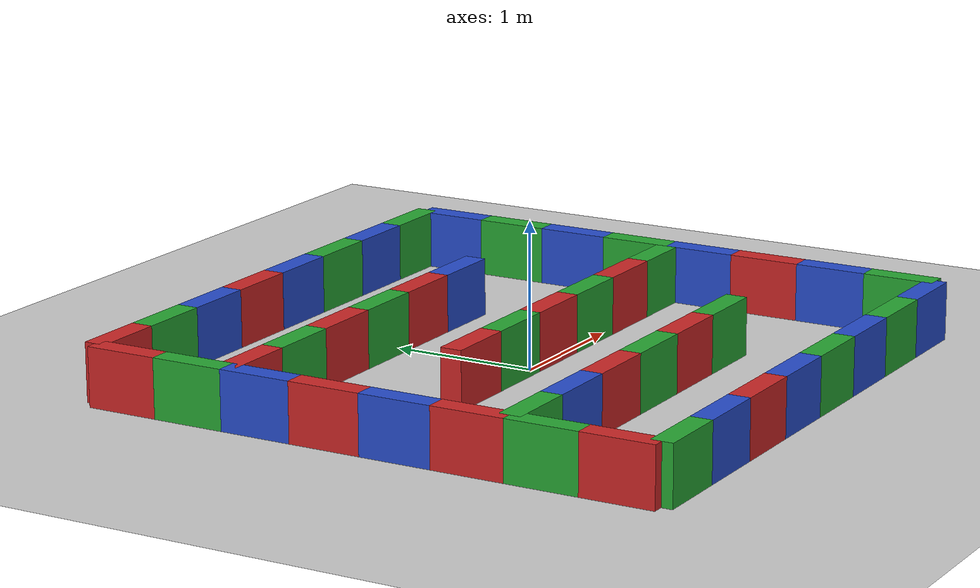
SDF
<?xml version="1.0" ?>
<!-- 자동 생성: generate_world.py  (블록 0.5x0.4m 가로직사각형, 세로 동일색, 순환아님) -->
<sdf version="1.6">
  <world name="color_maze">
    <include><uri>model://sun</uri></include>
    <include><uri>model://ground_plane</uri></include>
    <scene>
      <ambient>0.6 0.6 0.6 1</ambient>
      <background>0.7 0.7 0.7 1</background>
      <shadows>false</shadows>
    </scene>
    <physics type="ode">
      <real_time_update_rate>1000</real_time_update_rate>
      <max_step_size>0.001</max_step_size>
    </physics>

    <model name="wall_outer_bottom">
      <static>true</static>
      <pose>0 -2 0.2 0 0 0</pose>
      <link name="link">
        <collision name="c"><geometry><box><size>4.0 0.15 0.4</size></box></geometry></collision>
        <visual name="b_0">
          <pose>-1.7500 0 0 0 0 0</pose>
          <geometry><box><size>0.5 0.15 0.4</size></box></geometry>
          <material><script><uri>file://media/materials/scripts/gazebo.material</uri><name>Gazebo/Green</name></script></material>
        </visual>
        <visual name="b_1">
          <pose>-1.2500 0 0 0 0 0</pose>
          <geometry><box><size>0.5 0.15 0.4</size></box></geometry>
          <material><script><uri>file://media/materials/scripts/gazebo.material</uri><name>Gazebo/Blue</name></script></material>
        </visual>
        <visual name="b_2">
          <pose>-0.7500 0 0 0 0 0</pose>
          <geometry><box><size>0.5 0.15 0.4</size></box></geometry>
          <material><script><uri>file://media/materials/scripts/gazebo.material</uri><name>Gazebo/Red</name></script></material>
        </visual>
        <visual name="b_3">
          <pose>-0.2500 0 0 0 0 0</pose>
          <geometry><box><size>0.5 0.15 0.4</size></box></geometry>
          <material><script><uri>file://media/materials/scripts/gazebo.material</uri><name>Gazebo/Blue</name></script></material>
        </visual>
        <visual name="b_4">
          <pose>0.2500 0 0 0 0 0</pose>
          <geometry><box><size>0.5 0.15 0.4</size></box></geometry>
          <material><script><uri>file://media/materials/scripts/gazebo.material</uri><name>Gazebo/Green</name></script></material>
        </visual>
        <visual name="b_5">
          <pose>0.7500 0 0 0 0 0</pose>
          <geometry><box><size>0.5 0.15 0.4</size></box></geometry>
          <material><script><uri>file://media/materials/scripts/gazebo.material</uri><name>Gazebo/Blue</name></script></material>
        </visual>
        <visual name="b_6">
          <pose>1.2500 0 0 0 0 0</pose>
          <geometry><box><size>0.5 0.15 0.4</size></box></geometry>
          <material><script><uri>file://media/materials/scripts/gazebo.material</uri><name>Gazebo/Green</name></script></material>
        </visual>
        <visual name="b_7">
          <pose>1.7500 0 0 0 0 0</pose>
          <geometry><box><size>0.5 0.15 0.4</size></box></geometry>
          <material><script><uri>file://media/materials/scripts/gazebo.material</uri><name>Gazebo/Blue</name></script></material>
        </visual>
      </link>
    </model>

    <model name="wall_outer_top">
      <static>true</static>
      <pose>0 2 0.2 0 0 0</pose>
      <link name="link">
        <collision name="c"><geometry><box><size>4.0 0.15 0.4</size></box></geometry></collision>
        <visual name="b_0">
          <pose>-1.7500 0 0 0 0 0</pose>
          <geometry><box><size>0.5 0.15 0.4</size></box></geometry>
          <material><script><uri>file://media/materials/scripts/gazebo.material</uri><name>Gazebo/Red</name></script></material>
        </visual>
        <visual name="b_1">
          <pose>-1.2500 0 0 0 0 0</pose>
          <geometry><box><size>0.5 0.15 0.4</size></box></geometry>
          <material><script><uri>file://media/materials/scripts/gazebo.material</uri><name>Gazebo/Green</name></script></material>
        </visual>
        <visual name="b_2">
          <pose>-0.7500 0 0 0 0 0</pose>
          <geometry><box><size>0.5 0.15 0.4</size></box></geometry>
          <material><script><uri>file://media/materials/scripts/gazebo.material</uri><name>Gazebo/Blue</name></script></material>
        </visual>
        <visual name="b_3">
          <pose>-0.2500 0 0 0 0 0</pose>
          <geometry><box><size>0.5 0.15 0.4</size></box></geometry>
          <material><script><uri>file://media/materials/scripts/gazebo.material</uri><name>Gazebo/Red</name></script></material>
        </visual>
        <visual name="b_4">
          <pose>0.2500 0 0 0 0 0</pose>
          <geometry><box><size>0.5 0.15 0.4</size></box></geometry>
          <material><script><uri>file://media/materials/scripts/gazebo.material</uri><name>Gazebo/Blue</name></script></material>
        </visual>
        <visual name="b_5">
          <pose>0.7500 0 0 0 0 0</pose>
          <geometry><box><size>0.5 0.15 0.4</size></box></geometry>
          <material><script><uri>file://media/materials/scripts/gazebo.material</uri><name>Gazebo/Green</name></script></material>
        </visual>
        <visual name="b_6">
          <pose>1.2500 0 0 0 0 0</pose>
          <geometry><box><size>0.5 0.15 0.4</size></box></geometry>
          <material><script><uri>file://media/materials/scripts/gazebo.material</uri><name>Gazebo/Blue</name></script></material>
        </visual>
        <visual name="b_7">
          <pose>1.7500 0 0 0 0 0</pose>
          <geometry><box><size>0.5 0.15 0.4</size></box></geometry>
          <material><script><uri>file://media/materials/scripts/gazebo.material</uri><name>Gazebo/Green</name></script></material>
        </visual>
      </link>
    </model>

    <model name="wall_outer_left">
      <static>true</static>
      <pose>-2 0 0.2 0 0 0</pose>
      <link name="link">
        <collision name="c"><geometry><box><size>0.15 4.0 0.4</size></box></geometry></collision>
        <visual name="b_0">
          <pose>0 -1.7500 0 0 0 0</pose>
          <geometry><box><size>0.15 0.5 0.4</size></box></geometry>
          <material><script><uri>file://media/materials/scripts/gazebo.material</uri><name>Gazebo/Red</name></script></material>
        </visual>
        <visual name="b_1">
          <pose>0 -1.2500 0 0 0 0</pose>
          <geometry><box><size>0.15 0.5 0.4</size></box></geometry>
          <material><script><uri>file://media/materials/scripts/gazebo.material</uri><name>Gazebo/Green</name></script></material>
        </visual>
        <visual name="b_2">
          <pose>0 -0.7500 0 0 0 0</pose>
          <geometry><box><size>0.15 0.5 0.4</size></box></geometry>
          <material><script><uri>file://media/materials/scripts/gazebo.material</uri><name>Gazebo/Red</name></script></material>
        </visual>
        <visual name="b_3">
          <pose>0 -0.2500 0 0 0 0</pose>
          <geometry><box><size>0.15 0.5 0.4</size></box></geometry>
          <material><script><uri>file://media/materials/scripts/gazebo.material</uri><name>Gazebo/Blue</name></script></material>
        </visual>
        <visual name="b_4">
          <pose>0 0.2500 0 0 0 0</pose>
          <geometry><box><size>0.15 0.5 0.4</size></box></geometry>
          <material><script><uri>file://media/materials/scripts/gazebo.material</uri><name>Gazebo/Red</name></script></material>
        </visual>
        <visual name="b_5">
          <pose>0 0.7500 0 0 0 0</pose>
          <geometry><box><size>0.15 0.5 0.4</size></box></geometry>
          <material><script><uri>file://media/materials/scripts/gazebo.material</uri><name>Gazebo/Blue</name></script></material>
        </visual>
        <visual name="b_6">
          <pose>0 1.2500 0 0 0 0</pose>
          <geometry><box><size>0.15 0.5 0.4</size></box></geometry>
          <material><script><uri>file://media/materials/scripts/gazebo.material</uri><name>Gazebo/Green</name></script></material>
        </visual>
        <visual name="b_7">
          <pose>0 1.7500 0 0 0 0</pose>
          <geometry><box><size>0.15 0.5 0.4</size></box></geometry>
          <material><script><uri>file://media/materials/scripts/gazebo.material</uri><name>Gazebo/Red</name></script></material>
        </visual>
      </link>
    </model>

    <model name="wall_outer_right">
      <static>true</static>
      <pose>2 0 0.2 0 0 0</pose>
      <link name="link">
        <collision name="c"><geometry><box><size>0.15 4.0 0.4</size></box></geometry></collision>
        <visual name="b_0">
          <pose>0 -1.7500 0 0 0 0</pose>
          <geometry><box><size>0.15 0.5 0.4</size></box></geometry>
          <material><script><uri>file://media/materials/scripts/gazebo.material</uri><name>Gazebo/Green</name></script></material>
        </visual>
        <visual name="b_1">
          <pose>0 -1.2500 0 0 0 0</pose>
          <geometry><box><size>0.15 0.5 0.4</size></box></geometry>
          <material><script><uri>file://media/materials/scripts/gazebo.material</uri><name>Gazebo/Blue</name></script></material>
        </visual>
        <visual name="b_2">
          <pose>0 -0.7500 0 0 0 0</pose>
          <geometry><box><size>0.15 0.5 0.4</size></box></geometry>
          <material><script><uri>file://media/materials/scripts/gazebo.material</uri><name>Gazebo/Red</name></script></material>
        </visual>
        <visual name="b_3">
          <pose>0 -0.2500 0 0 0 0</pose>
          <geometry><box><size>0.15 0.5 0.4</size></box></geometry>
          <material><script><uri>file://media/materials/scripts/gazebo.material</uri><name>Gazebo/Blue</name></script></material>
        </visual>
        <visual name="b_4">
          <pose>0 0.2500 0 0 0 0</pose>
          <geometry><box><size>0.15 0.5 0.4</size></box></geometry>
          <material><script><uri>file://media/materials/scripts/gazebo.material</uri><name>Gazebo/Green</name></script></material>
        </visual>
        <visual name="b_5">
          <pose>0 0.7500 0 0 0 0</pose>
          <geometry><box><size>0.15 0.5 0.4</size></box></geometry>
          <material><script><uri>file://media/materials/scripts/gazebo.material</uri><name>Gazebo/Blue</name></script></material>
        </visual>
        <visual name="b_6">
          <pose>0 1.2500 0 0 0 0</pose>
          <geometry><box><size>0.15 0.5 0.4</size></box></geometry>
          <material><script><uri>file://media/materials/scripts/gazebo.material</uri><name>Gazebo/Green</name></script></material>
        </visual>
        <visual name="b_7">
          <pose>0 1.7500 0 0 0 0</pose>
          <geometry><box><size>0.15 0.5 0.4</size></box></geometry>
          <material><script><uri>file://media/materials/scripts/gazebo.material</uri><name>Gazebo/Blue</name></script></material>
        </visual>
      </link>
    </model>

    <model name="wall_b1_c0">
      <static>true</static>
      <pose>-1.5 -1.0 0.2 0 0 0</pose>
      <link name="link">
        <collision name="c"><geometry><box><size>1.0 0.15 0.4</size></box></geometry></collision>
        <visual name="b_0">
          <pose>-0.2500 0 0 0 0 0</pose>
          <geometry><box><size>0.5 0.15 0.4</size></box></geometry>
          <material><script><uri>file://media/materials/scripts/gazebo.material</uri><name>Gazebo/Green</name></script></material>
        </visual>
        <visual name="b_1">
          <pose>0.2500 0 0 0 0 0</pose>
          <geometry><box><size>0.5 0.15 0.4</size></box></geometry>
          <material><script><uri>file://media/materials/scripts/gazebo.material</uri><name>Gazebo/Blue</name></script></material>
        </visual>
      </link>
    </model>

    <model name="wall_b1_c1">
      <static>true</static>
      <pose>-0.5 -1.0 0.2 0 0 0</pose>
      <link name="link">
        <collision name="c"><geometry><box><size>1.0 0.15 0.4</size></box></geometry></collision>
        <visual name="b_0">
          <pose>-0.2500 0 0 0 0 0</pose>
          <geometry><box><size>0.5 0.15 0.4</size></box></geometry>
          <material><script><uri>file://media/materials/scripts/gazebo.material</uri><name>Gazebo/Red</name></script></material>
        </visual>
        <visual name="b_1">
          <pose>0.2500 0 0 0 0 0</pose>
          <geometry><box><size>0.5 0.15 0.4</size></box></geometry>
          <material><script><uri>file://media/materials/scripts/gazebo.material</uri><name>Gazebo/Green</name></script></material>
        </visual>
      </link>
    </model>

    <model name="wall_b1_c2">
      <static>true</static>
      <pose>0.5 -1.0 0.2 0 0 0</pose>
      <link name="link">
        <collision name="c"><geometry><box><size>1.0 0.15 0.4</size></box></geometry></collision>
        <visual name="b_0">
          <pose>-0.2500 0 0 0 0 0</pose>
          <geometry><box><size>0.5 0.15 0.4</size></box></geometry>
          <material><script><uri>file://media/materials/scripts/gazebo.material</uri><name>Gazebo/Red</name></script></material>
        </visual>
        <visual name="b_1">
          <pose>0.2500 0 0 0 0 0</pose>
          <geometry><box><size>0.5 0.15 0.4</size></box></geometry>
          <material><script><uri>file://media/materials/scripts/gazebo.material</uri><name>Gazebo/Green</name></script></material>
        </visual>
      </link>
    </model>

    <model name="wall_b2_c0">
      <static>true</static>
      <pose>-0.5 0.0 0.2 0 0 0</pose>
      <link name="link">
        <collision name="c"><geometry><box><size>1.0 0.15 0.4</size></box></geometry></collision>
        <visual name="b_0">
          <pose>-0.2500 0 0 0 0 0</pose>
          <geometry><box><size>0.5 0.15 0.4</size></box></geometry>
          <material><script><uri>file://media/materials/scripts/gazebo.material</uri><name>Gazebo/Red</name></script></material>
        </visual>
        <visual name="b_1">
          <pose>0.2500 0 0 0 0 0</pose>
          <geometry><box><size>0.5 0.15 0.4</size></box></geometry>
          <material><script><uri>file://media/materials/scripts/gazebo.material</uri><name>Gazebo/Green</name></script></material>
        </visual>
      </link>
    </model>

    <model name="wall_b2_c1">
      <static>true</static>
      <pose>0.5 0.0 0.2 0 0 0</pose>
      <link name="link">
        <collision name="c"><geometry><box><size>1.0 0.15 0.4</size></box></geometry></collision>
        <visual name="b_0">
          <pose>-0.2500 0 0 0 0 0</pose>
          <geometry><box><size>0.5 0.15 0.4</size></box></geometry>
          <material><script><uri>file://media/materials/scripts/gazebo.material</uri><name>Gazebo/Red</name></script></material>
        </visual>
        <visual name="b_1">
          <pose>0.2500 0 0 0 0 0</pose>
          <geometry><box><size>0.5 0.15 0.4</size></box></geometry>
          <material><script><uri>file://media/materials/scripts/gazebo.material</uri><name>Gazebo/Green</name></script></material>
        </visual>
      </link>
    </model>

    <model name="wall_b2_c2">
      <static>true</static>
      <pose>1.5 0.0 0.2 0 0 0</pose>
      <link name="link">
        <collision name="c"><geometry><box><size>1.0 0.15 0.4</size></box></geometry></collision>
        <visual name="b_0">
          <pose>-0.2500 0 0 0 0 0</pose>
          <geometry><box><size>0.5 0.15 0.4</size></box></geometry>
          <material><script><uri>file://media/materials/scripts/gazebo.material</uri><name>Gazebo/Red</name></script></material>
        </visual>
        <visual name="b_1">
          <pose>0.2500 0 0 0 0 0</pose>
          <geometry><box><size>0.5 0.15 0.4</size></box></geometry>
          <material><script><uri>file://media/materials/scripts/gazebo.material</uri><name>Gazebo/Green</name></script></material>
        </visual>
      </link>
    </model>

    <model name="wall_b3_c0">
      <static>true</static>
      <pose>-1.5 1.0 0.2 0 0 0</pose>
      <link name="link">
        <collision name="c"><geometry><box><size>1.0 0.15 0.4</size></box></geometry></collision>
        <visual name="b_0">
          <pose>-0.2500 0 0 0 0 0</pose>
          <geometry><box><size>0.5 0.15 0.4</size></box></geometry>
          <material><script><uri>file://media/materials/scripts/gazebo.material</uri><name>Gazebo/Red</name></script></material>
        </visual>
        <visual name="b_1">
          <pose>0.2500 0 0 0 0 0</pose>
          <geometry><box><size>0.5 0.15 0.4</size></box></geometry>
          <material><script><uri>file://media/materials/scripts/gazebo.material</uri><name>Gazebo/Green</name></script></material>
        </visual>
      </link>
    </model>

    <model name="wall_b3_c1">
      <static>true</static>
      <pose>-0.5 1.0 0.2 0 0 0</pose>
      <link name="link">
        <collision name="c"><geometry><box><size>1.0 0.15 0.4</size></box></geometry></collision>
        <visual name="b_0">
          <pose>-0.2500 0 0 0 0 0</pose>
          <geometry><box><size>0.5 0.15 0.4</size></box></geometry>
          <material><script><uri>file://media/materials/scripts/gazebo.material</uri><name>Gazebo/Red</name></script></material>
        </visual>
        <visual name="b_1">
          <pose>0.2500 0 0 0 0 0</pose>
          <geometry><box><size>0.5 0.15 0.4</size></box></geometry>
          <material><script><uri>file://media/materials/scripts/gazebo.material</uri><name>Gazebo/Green</name></script></material>
        </visual>
      </link>
    </model>

    <model name="wall_b3_c2">
      <static>true</static>
      <pose>0.5 1.0 0.2 0 0 0</pose>
      <link name="link">
        <collision name="c"><geometry><box><size>1.0 0.15 0.4</size></box></geometry></collision>
        <visual name="b_0">
          <pose>-0.2500 0 0 0 0 0</pose>
          <geometry><box><size>0.5 0.15 0.4</size></box></geometry>
          <material><script><uri>file://media/materials/scripts/gazebo.material</uri><name>Gazebo/Red</name></script></material>
        </visual>
        <visual name="b_1">
          <pose>0.2500 0 0 0 0 0</pose>
          <geometry><box><size>0.5 0.15 0.4</size></box></geometry>
          <material><script><uri>file://media/materials/scripts/gazebo.material</uri><name>Gazebo/Blue</name></script></material>
        </visual>
      </link>
    </model>

  </world>
</sdf>
